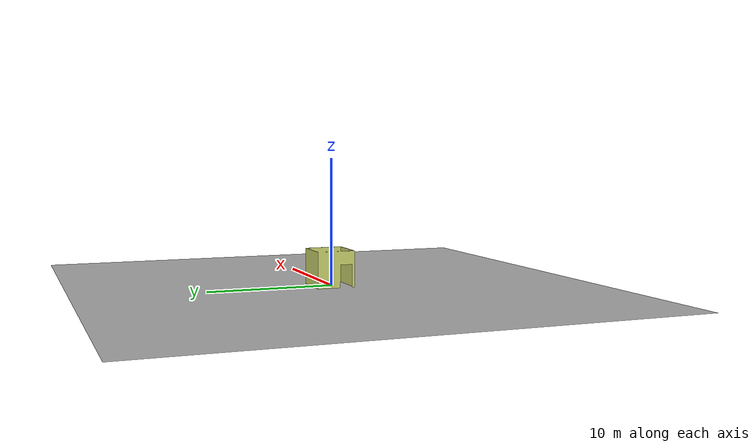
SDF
<sdf version='1.6'>
  <model name='Bathroom'>
  <static>true</static>
    <link name='base_link'>
      <collision name="collision">
        <geometry>
          <mesh>
            <scale>1 1 1</scale>
            <uri>model://Bathroom/meshes/bathroom.dae</uri>
          </mesh>
        </geometry>
      </collision>
      <visual name='base_link_visual'>
        <pose frame=''>0 0 0 0 0 0</pose>
        <geometry>
          <mesh>
            <scale>1 1 1</scale>
            <uri>model://Bathroom/meshes/bathroom.dae</uri>
          </mesh>
        </geometry>
      </visual>
    </link>
  </model>
</sdf>
